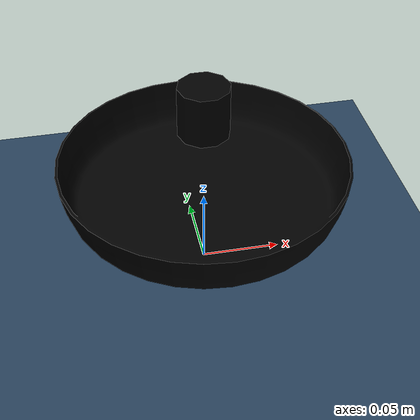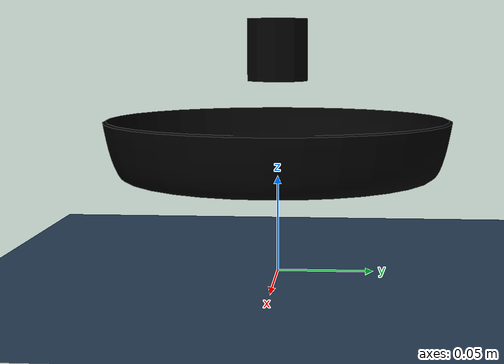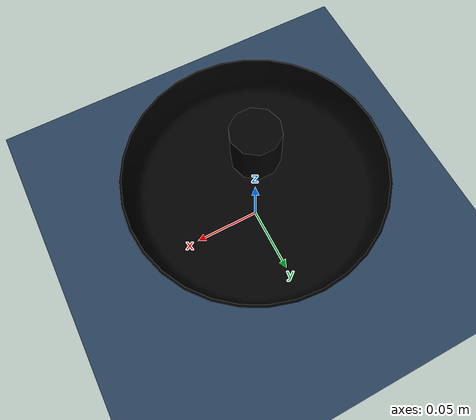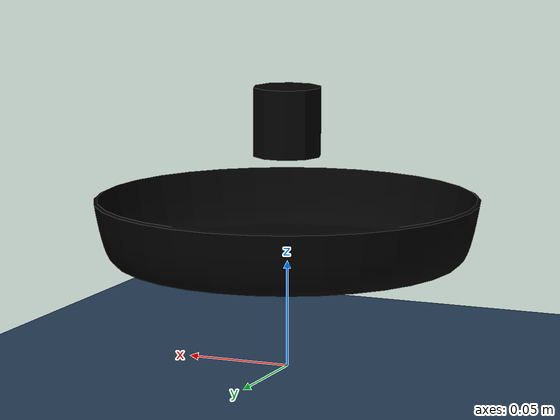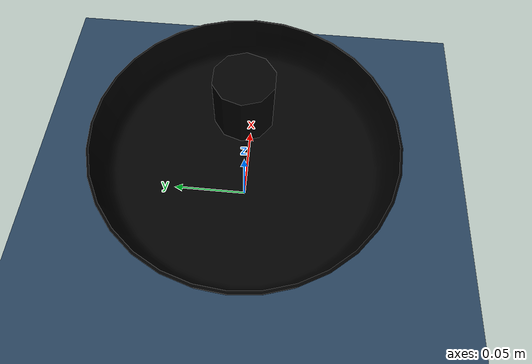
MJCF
<mujoco model="black_bowl">
  <compiler angle="radian" meshdir="assets" autolimits="true" />
  <option cone="elliptic" impratio="10" />
  <default>
    <default class="black_bowl">
      <default class="visual">
        <geom group="2" contype="0" conaffinity="0" />
      </default>
      <default class="collision">
        <geom group="3" condim="3" margin="0.001" />
      </default>
    </default>
  </default>
  <default>
    <default class="black_dec_cylinder">
      <default class="c_visual">
        <geom group="2" contype="0" conaffinity="0" />
      </default>
      <default class="c_collision">
        <geom group="3" condim="3" margin="0.001" />
      </default>
    </default>
  </default>
  <asset>
    <mesh name="black_dec_cylinder" file="dec_cylinder.obj"   />
  </asset>
  <asset>
    <material name="black" rgba="0 0 0 1" />
    <mesh name="black_bowl" file="bowl.obj" />
  </asset>
  <asset>
        <texture type="skybox" builtin="gradient" rgb1="0.3 0.5 0.7" rgb2="0 0 0" width="512" height="3072"/>
        <texture type="2d" name="groundplane" builtin="checker" mark="edge" rgb1="0.2 0.3 0.4" rgb2="0.1 0.2 0.3"
          markrgb="0.8 0.8 0.8" width="300" height="300"/>
        <material name="groundplane" texture="groundplane" texuniform="true" texrepeat="5 5" reflectance="0.2"/>
    </asset>
  <worldbody>
  <light pos="0 0 2" dir="0 0 -1" directional="true"/>
        <geom name="floor" size="0 0 0.05" type="plane" material="groundplane"/>
  <body name="black_dec_cylinder_body" childclass="black_dec_cylinder" pos="0 0 0.1">
      <geom type="mesh" class="c_visual" name="black_dec_cylinder_visual_geom" mesh="black_dec_cylinder" rgba="0 0 0 1" />
      <geom type="mesh" class="c_collision" name="black_dec_cylinder_collision_geom" mesh="black_dec_cylinder" friction="1 0.3 0.1" density="50" />
      <joint type="free" name="black_dec_cylinder_joint" />
    </body>
    <body name="black_bowl_body" childclass="black_bowl" pos="0 0 0.05" euler="0 0 0">
      <geom type="mesh" class="visual" name="black_bowl_visual_geom" mesh="black_bowl" material="black" />
      <geom type="box" class="collision" pos="0.058 0 0.015" euler="0 0 0" size="0.005 0.017218 0.015" friction="1 0.3 0.1" density="50" />
      <geom type="box" class="collision" pos="0.050229 0.029 0.015" euler="0 0 0.523599" size="0.005 0.017218 0.015" friction="1 0.3 0.1" density="50" />
      <geom type="box" class="collision" pos="0.029 0.050229 0.015" euler="0 0 1.047198" size="0.005 0.017218 0.015" friction="1 0.3 0.1" density="50" />
      <geom type="box" class="collision" pos="0 0.058 0.015" euler="0 0 1.570796" size="0.005 0.017218 0.015" friction="1 0.3 0.1" density="50" />
      <geom type="box" class="collision" pos="-0.029 0.050229 0.015" euler="0 0 2.094395" size="0.005 0.017218 0.015" friction="1 0.3 0.1" density="50" />
      <geom type="box" class="collision" pos="-0.050229 0.029 0.015" euler="0 0 2.617994" size="0.005 0.017218 0.015" friction="1 0.3 0.1" density="50" />
      <geom type="box" class="collision" pos="-0.058 0 0.015" euler="0 0 3.141593" size="0.005 0.017218 0.015" friction="1 0.3 0.1" density="50" />
      <geom type="box" class="collision" pos="-0.050229 -0.029 0.015" euler="0 0 3.665191" size="0.005 0.017218 0.015" friction="1 0.3 0.1" density="50" />
      <geom type="box" class="collision" pos="-0.029 -0.050229 0.015" euler="0 0 4.18879" size="0.005 0.017218 0.015" friction="1 0.3 0.1" density="50" />
      <geom type="box" class="collision" pos="0 -0.058 0.015" euler="0 0 4.712389" size="0.005 0.017218 0.015" friction="1 0.3 0.1" density="50" />
      <geom type="box" class="collision" pos="0.029 -0.050229 0.015" euler="0 0 5.235988" size="0.005 0.017218 0.015" friction="1 0.3 0.1" density="50" />
      <geom type="box" class="collision" pos="0.050229 -0.029 0.015" euler="0 0 5.759587" size="0.005 0.017218 0.015" friction="1 0.3 0.1" density="50" />
      <geom type="cylinder" class="collision" pos="0 0 0.002" size="0.058 0.002" friction="1 0.3 0.1" density="50" />
      <joint type="free" name="black_bowl_joint" />
    </body>
  </worldbody>
</mujoco>
